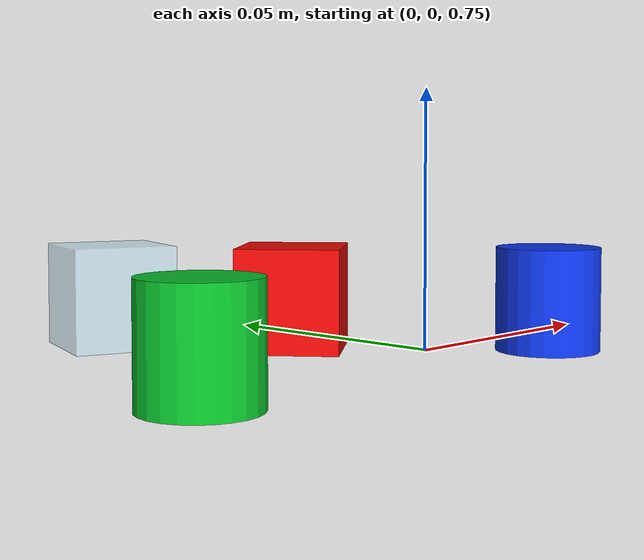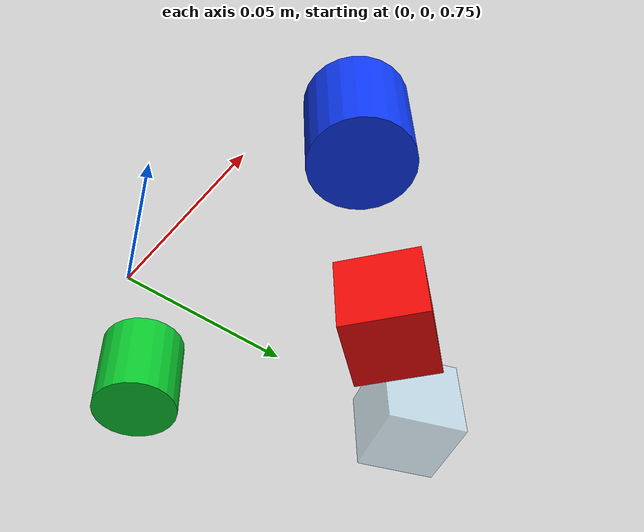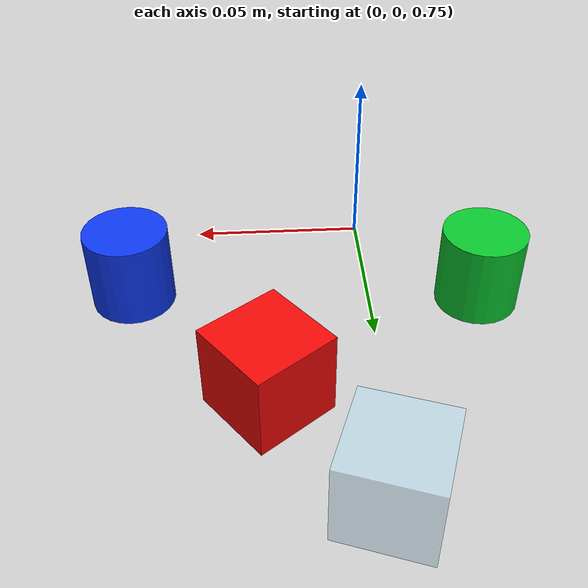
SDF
<?xml version="1.0"?>
<sdf version="1.9">
  <model name="primitive_objects">
    <static>true</static>

    <link name="objects_link">
      <visual name="red_cube_visual">
        <pose>0.030 0.065 0.7525 0 0 0.65</pose>
        <geometry>
          <box>
            <size>0.025 0.025 0.025</size>
          </box>
        </geometry>
        <material>
          <ambient>0.95 0.04 0.03 1</ambient>
          <diffuse>0.95 0.04 0.03 1</diffuse>
          <specular>0.25 0.08 0.06 1</specular>
        </material>
      </visual>
      <collision name="red_cube_collision">
        <pose>0.030 0.065 0.7525 0 0 0.65</pose>
        <geometry>
          <box>
            <size>0.025 0.025 0.025</size>
          </box>
        </geometry>
      </collision>

      <visual name="blue_cylinder_visual">
        <pose>0.070 0.018 0.7525 0 0 0</pose>
        <geometry>
          <cylinder>
            <radius>0.0125</radius>
            <length>0.025</length>
          </cylinder>
        </geometry>
        <material>
          <ambient>0.05 0.22 0.95 1</ambient>
          <diffuse>0.05 0.22 0.95 1</diffuse>
          <specular>0.08 0.12 0.35 1</specular>
        </material>
      </visual>
      <collision name="blue_cylinder_collision">
        <pose>0.070 0.018 0.7525 0 0 0</pose>
        <geometry>
          <cylinder>
            <radius>0.0125</radius>
            <length>0.025</length>
          </cylinder>
        </geometry>
      </collision>

      <visual name="green_cylinder_visual">
        <pose>-0.035 0.025 0.7525 0 0 0</pose>
        <geometry>
          <cylinder>
            <radius>0.0125</radius>
            <length>0.025</length>
          </cylinder>
        </geometry>
        <material>
          <ambient>0.04 0.78 0.18 1</ambient>
          <diffuse>0.04 0.78 0.18 1</diffuse>
          <specular>0.06 0.25 0.08 1</specular>
        </material>
      </visual>
      <collision name="green_cylinder_collision">
        <pose>-0.035 0.025 0.7525 0 0 0</pose>
        <geometry>
          <cylinder>
            <radius>0.0125</radius>
            <length>0.025</length>
          </cylinder>
        </geometry>
      </collision>

      <visual name="glass_block_visual">
        <pose>0.002 0.100 0.7525 0 0 -0.35</pose>
        <geometry>
          <box>
            <size>0.025 0.025 0.025</size>
          </box>
        </geometry>
        <material>
          <ambient>0.70 0.90 1.00 0.45</ambient>
          <diffuse>0.70 0.90 1.00 0.45</diffuse>
          <specular>0.95 0.95 1.00 1</specular>
        </material>
        <transparency>0.55</transparency>
      </visual>
      <collision name="glass_block_collision">
        <pose>0.002 0.100 0.7525 0 0 -0.35</pose>
        <geometry>
          <box>
            <size>0.025 0.025 0.025</size>
          </box>
        </geometry>
      </collision>
    </link>
  </model>
</sdf>
